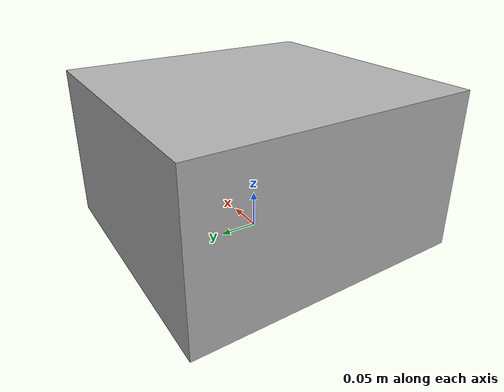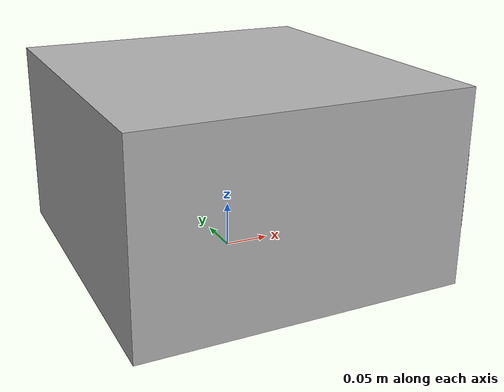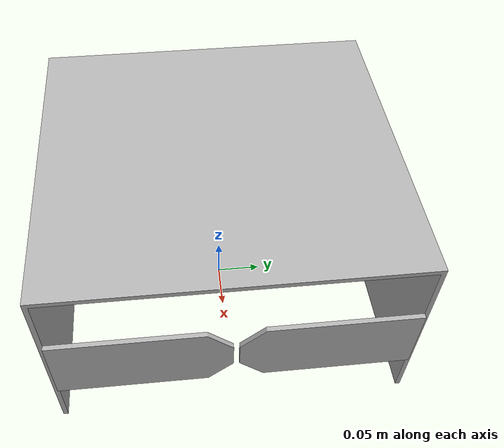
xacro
<?xml version="1.0" ?>
<robot name="headquarters" xmlns:xacro="http://www.ros.org/wiki/xacro">

<xacro:include filename="$(find headquarters_description)/urdf/materials.xacro" />
<xacro:include filename="$(find headquarters_description)/urdf/headquarters.trans" />
<xacro:include filename="$(find headquarters_description)/urdf/headquarters.gazebo" />
<link name="base_link">
  <inertial>
    <origin rpy="0 0 0" xyz="-0.03670847750865052 0.0 0.1417084775086505"/>
    <mass value="13.611899999999999"/>
    <inertia ixx="0.341869" ixy="0.0" ixz="-0.019591" iyy="0.242235" iyz="0.0" izz="0.454118"/>
  </inertial>
  <visual>
    <origin rpy="0 0 0" xyz="0 0 0"/>
    <geometry>
      <mesh filename="package://headquarters_description/meshes/base_link.stl" scale="0.001 0.001 0.001"/>
    </geometry>
    <material name="silver"/>
  </visual>
  <collision>
    <origin rpy="0 0 0" xyz="0 0 0"/>
    <geometry>
      <mesh filename="package://headquarters_description/meshes/base_link.stl" scale="0.001 0.001 0.001"/>
    </geometry>
  </collision>
</link>

<link name="left_door_1">
  <inertial>
    <origin rpy="0 0 0" xyz="0.0025000000000000022 0.08479817756433952 0.0"/>
    <mass value="0.5312487499999979"/>
    <inertia ixx="0.001556" ixy="0.0" ixz="0.0" iyy="0.000272" iyz="0.0" izz="0.001286"/>
  </inertial>
  <visual>
    <origin rpy="0 0 0" xyz="-0.175 0.18 -0.1025"/>
    <geometry>
      <mesh filename="package://headquarters_description/meshes/left_door_1.stl" scale="0.001 0.001 0.001"/>
    </geometry>
    <material name="silver"/>
  </visual>
  <collision>
    <origin rpy="0 0 0" xyz="-0.175 0.18 -0.1025"/>
    <geometry>
      <mesh filename="package://headquarters_description/meshes/left_door_1.stl" scale="0.001 0.001 0.001"/>
    </geometry>
  </collision>
</link>

<link name="right_door_1">
  <inertial>
    <origin rpy="0 0 0" xyz="0.0025000000000000022 -0.0847981775643395 0.0"/>
    <mass value="0.5312487499999979"/>
    <inertia ixx="0.001556" ixy="0.0" ixz="0.0" iyy="0.000272" iyz="-0.0" izz="0.001286"/>
  </inertial>
  <visual>
    <origin rpy="0 0 0" xyz="-0.175 -0.18 -0.1025"/>
    <geometry>
      <mesh filename="package://headquarters_description/meshes/right_door_1.stl" scale="0.001 0.001 0.001"/>
    </geometry>
    <material name="silver"/>
  </visual>
  <collision>
    <origin rpy="0 0 0" xyz="-0.175 -0.18 -0.1025"/>
    <geometry>
      <mesh filename="package://headquarters_description/meshes/right_door_1.stl" scale="0.001 0.001 0.001"/>
    </geometry>
  </collision>
</link>

<joint name="Rev1" type="revolute">
  <origin rpy="0 0 0" xyz="0.175 -0.18 0.1025"/>
  <parent link="base_link"/>
  <child link="left_door_1"/>
  <axis xyz="0.0 0.0 1.0"/>
  <limit effort="100" lower="0.0" upper="1.570796" velocity="100"/>
</joint>

<joint name="Rev2" type="revolute">
  <origin rpy="0 0 0" xyz="0.175 0.18 0.1025"/>
  <parent link="base_link"/>
  <child link="right_door_1"/>
  <axis xyz="0.0 0.0 -1.0"/>
  <limit effort="100" lower="0.0" upper="1.570796" velocity="100"/>
</joint>

</robot>

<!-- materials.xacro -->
<robot name="headquarters" xmlns:xacro="http://www.ros.org/wiki/xacro" >

<material name="silver">
  <color rgba="0.700 0.700 0.700 1.000"/>
</material>

</robot>

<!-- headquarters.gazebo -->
<robot name="headquarters" xmlns:xacro="http://www.ros.org/wiki/xacro" >

<xacro:property name="body_color" value="Gazebo/Purple" />
<xacro:property name="gate_color" value="Gazebo/Red" />

<gazebo>
  <plugin filename="libgazebo_ros_control.so" name="control"/>
</gazebo>
<gazebo reference="base_link">
  <material>${body_color}</material>
  <mu1>1000</mu1>
  <mu2>1000</mu2>
  <selfCollide>true</selfCollide>
  <gravity>true</gravity>
  <static>true</static>
  <kinematic>true</kinematic>
</gazebo>

<gazebo reference="left_door_1">
  <material>${gate_color}</material>
  <mu1>1000</mu1>
  <mu2>1000</mu2>
  <selfCollide>true</selfCollide>
</gazebo>

<gazebo reference="right_door_1">
  <material>${gate_color}</material>
  <mu1>1000</mu1>
  <mu2>1000</mu2>
  <selfCollide>true</selfCollide>
</gazebo>

<gazebo reference="Rev_1">
    <implicitSpringDamper>1</implicitSpringDamper>
</gazebo>

<gazebo reference="Rev_2">
    <implicitSpringDamper>1</implicitSpringDamper>
</gazebo>

</robot>
